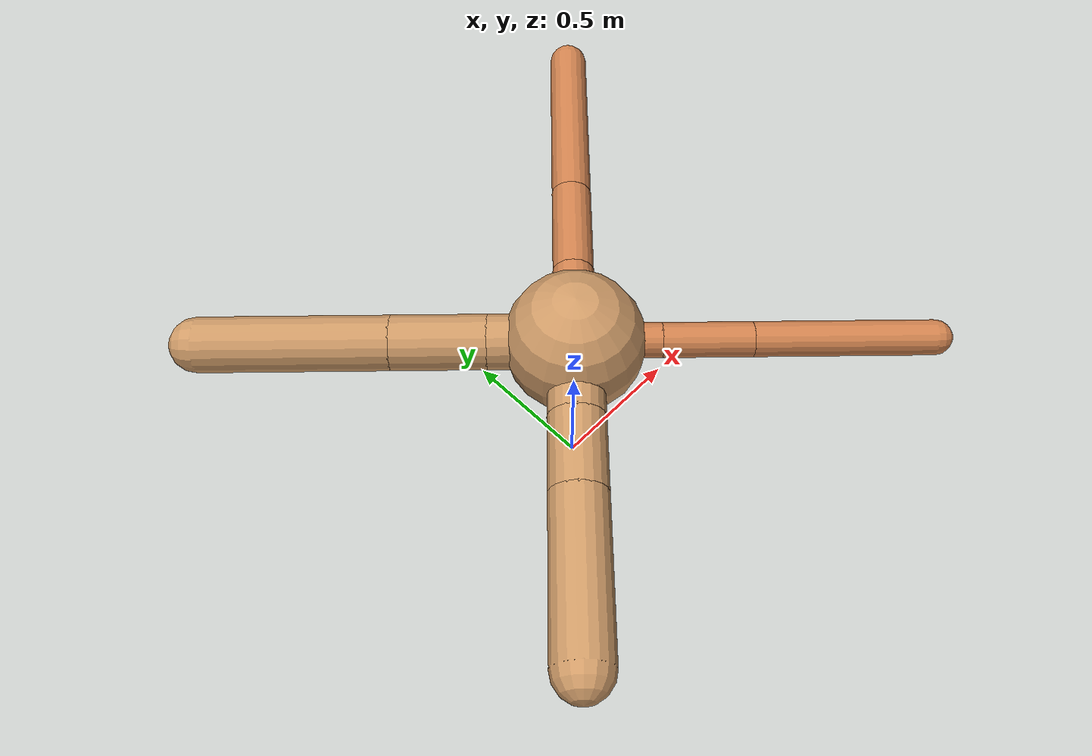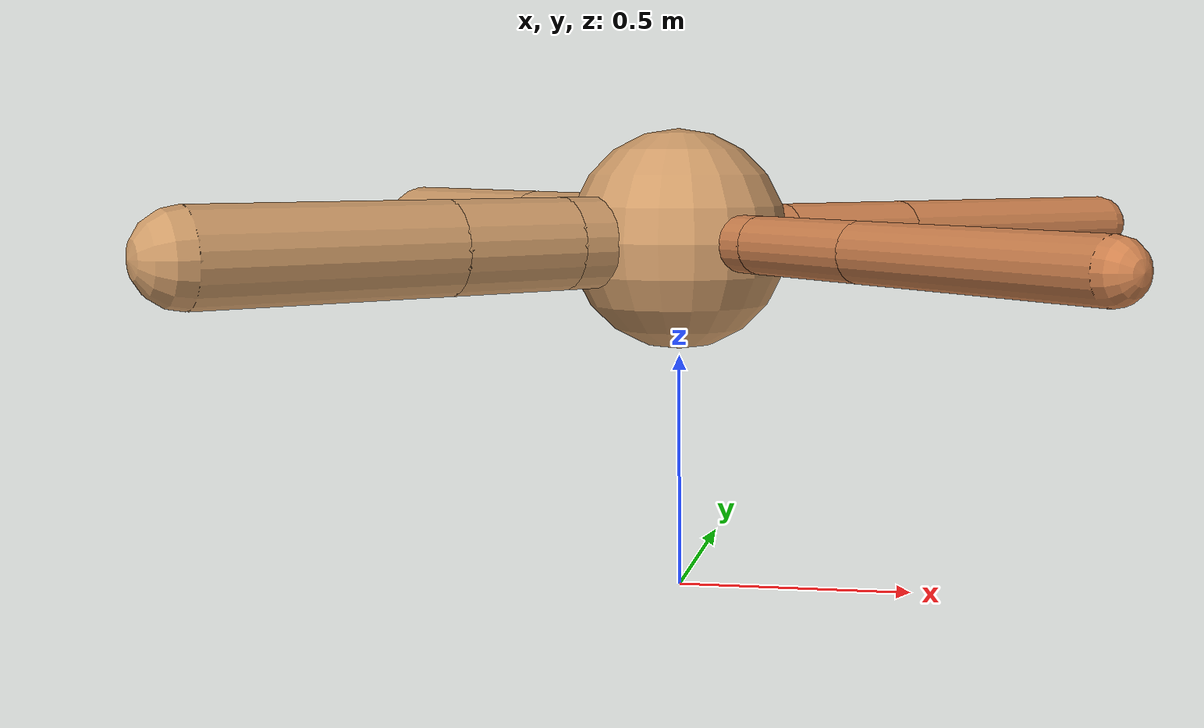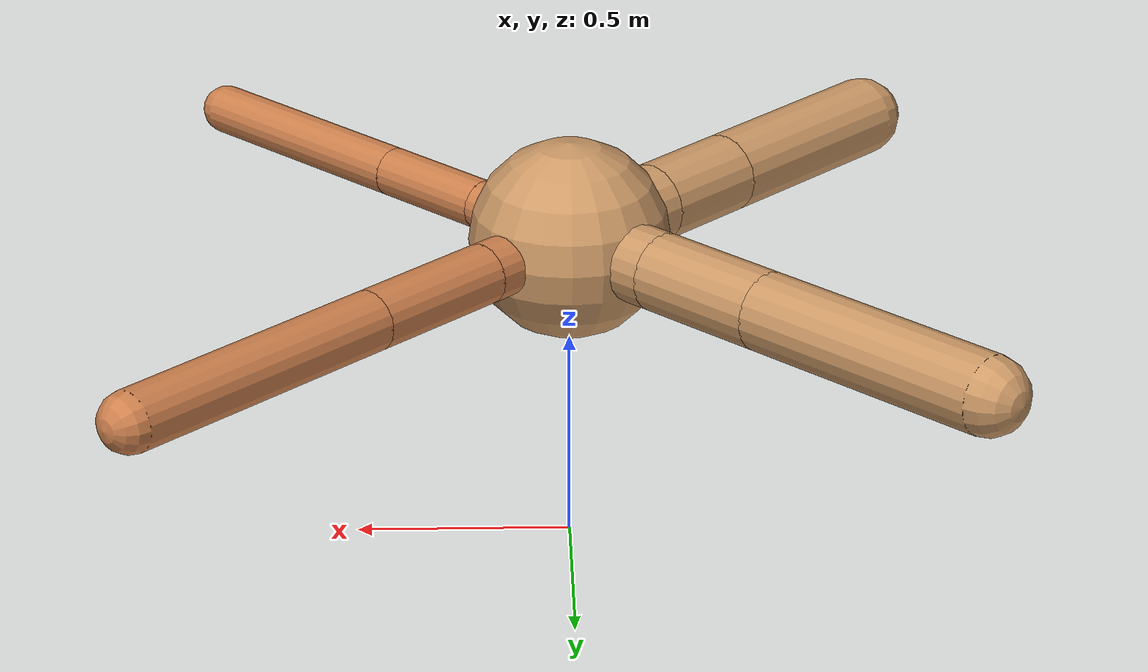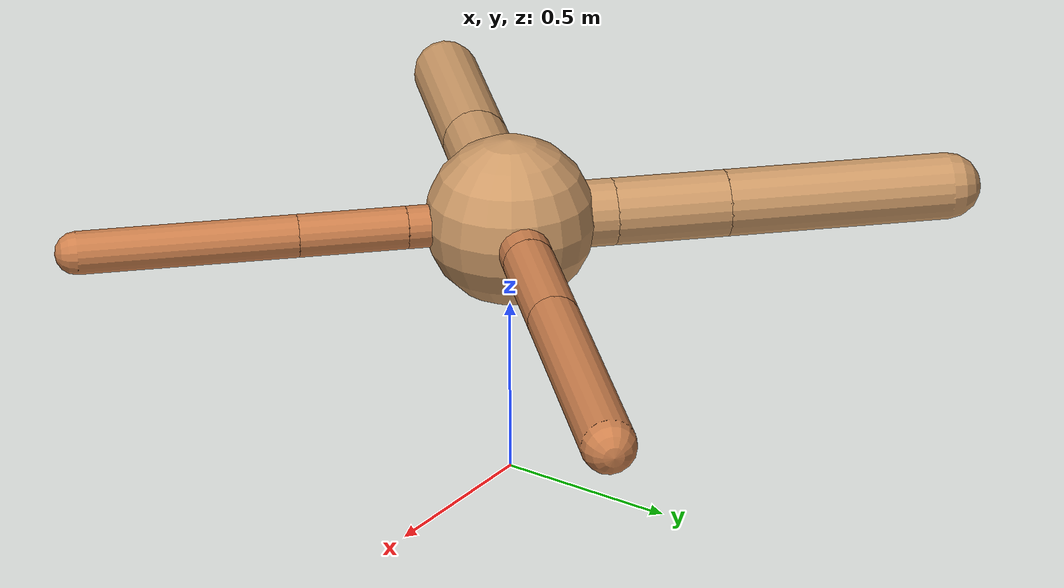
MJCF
<?xml version="1.0" ?>
<mujoco model="ant">

	<compiler angle="degree" coordinate="local" inertiafromgeom="true"/>

	<option integrator="RK4" timestep="0.01"/>

	<custom>

		<numeric data="0.0 0.0 0.55 1.0 0.0 0.0 0.0 0.0 1.0 0.0 -1.0 0.0 -1.0 0.0 1.0" name="init_qpos"/>

	</custom>

	<default>

		<joint armature="1" damping="1" limited="true"/>

		<geom conaffinity="0" condim="3" density="5.0" friction="1.5 0.1 0.1" margin="0.01" rgba="0.8 0.6 0.4 1"/>

	</default>

	<worldbody>

		<body name="torso" pos="0 0 0.75">

			<geom name="torso_geom" pos="0 0 0" size="0.23308942416083692" type="sphere"/>

			<!--joint armature="0" damping="0" limited="false" margin="0.01" name="root" pos="0 0 0" type="free"/-->

			<body name="front_left_leg" pos="0 0 0">

				<geom fromto="0 0 0 0.2 0.2 0" name="aux_1_geom" size="0.07028781262937024" type="capsule" rgba=".8 .5 .3 1"/>

				<body name="aux_1" pos="0.2 0.2 0">

					<joint axis="0 0 1" name="hip_1" pos="0.0 0.0 0.0" range="-40 40" type="hinge"/>

					<geom fromto="0 0 0 0.2473906995609017 0.2473906995609017 0" name="left_leg_geom" size="0.07028781262937024" type="capsule" rgba=".8 .5 .3 1"/>

					<body pos="0.2473906995609017 0.2473906995609017 0" name="front_left_foot">

						<joint axis="-1 1 0" name="ankle_1" pos="0.0 0.0 0.0" range="30 100" type="hinge"/>

						<geom fromto="0 0 0 0.4947813991218034 0.4947813991218034 0" name="left_ankle_geom" size="0.07028781262937024" type="capsule" rgba=".8 .5 .3 1"/>

					</body>

				</body>

			</body>

			<body name="front_right_leg" pos="0 0 0">

				<geom fromto="0 0 0 -0.2 0.2 0" name="aux_2_geom" size="0.0913185057375327" type="capsule"/>

				<body name="aux_2" pos="-0.2 0.2 0">

					<joint axis="0 0 1" name="hip_2" pos="0.0 0.0 0.0" range="-40 40" type="hinge"/>

					<geom fromto="0 0 0 -0.22068665584054267 0.22068665584054267 0" name="right_leg_geom" size="0.0913185057375327" type="capsule"/>

					<body pos="-0.22068665584054267 0.22068665584054267 0" name="front_right_foot">

						<joint axis="1 1 0" name="ankle_2" pos="0.0 0.0 0.0" range="-100 -30" type="hinge"/>

						<geom fromto="0 0 0 -0.44137331168108535 0.44137331168108535 0" name="right_ankle_geom" size="0.0913185057375327" type="capsule"/>

					</body>

				</body>

			</body>

			<body name="left_back_leg" pos="0 0 0">

				<geom fromto="0 0 0 -0.2 -0.2 0" name="aux_3_geom" size="0.09388228089760262" type="capsule"/>

				<body name="aux_3" pos="-0.2 -0.2 0">

					<joint axis="0 0 1" name="hip_3" pos="0.0 0.0 0.0" range="-40 40" type="hinge"/>

					<geom fromto="0 0 0 -0.17951722334389691 -0.17951722334389691 0" name="back_leg_geom" size="0.09388228089760262" type="capsule"/>

					<body pos="-0.17951722334389691 -0.17951722334389691 0" name="left_back_foot">

						<joint axis="-1 1 0" name="ankle_3" pos="0.0 0.0 0.0" range="-100 -30" type="hinge"/>

						<geom fromto="0 0 0 -0.35903444668779383 -0.35903444668779383 0" name="third_ankle_geom" size="0.09388228089760262" type="capsule"/>

					</body>

				</body>

			</body>

			<body name="right_back_leg" pos="0 0 0">

				<geom fromto="0 0 0 0.2 -0.2 0" name="aux_4_geom" size="0.058006523588201964" type="capsule" rgba=".8 .5 .3 1"/>

				<body name="aux_4" pos="0.2 -0.2 0">

					<joint axis="0 0 1" name="hip_4" pos="0.0 0.0 0.0" range="-40 40" type="hinge"/>

					<geom fromto="0 0 0 0.20886518914177932 -0.20886518914177932 0" name="rightback_leg_geom" size="0.058006523588201964" type="capsule" rgba=".8 .5 .3 1"/>

					<body pos="0.20886518914177932 -0.20886518914177932 0" name="right_back_foot">

						<joint axis="1 1 0" name="ankle_4" pos="0.0 0.0 0.0" range="30 100" type="hinge"/>

						<geom fromto="0 0 0 0.41773037828355863 -0.41773037828355863 0" name="fourth_ankle_geom" size="0.058006523588201964" type="capsule" rgba=".8 .5 .3 1"/>

					</body>

				</body>

			</body>

		</body>

	</worldbody>

	<actuator>

		<motor ctrllimited="true" ctrlrange="-1.0 1.0" joint="hip_4" gear="150"/>

		<motor ctrllimited="true" ctrlrange="-1.0 1.0" joint="ankle_4" gear="150"/>

		<motor ctrllimited="true" ctrlrange="-1.0 1.0" joint="hip_1" gear="150"/>

		<motor ctrllimited="true" ctrlrange="-1.0 1.0" joint="ankle_1" gear="150"/>

		<motor ctrllimited="true" ctrlrange="-1.0 1.0" joint="hip_2" gear="150"/>

		<motor ctrllimited="true" ctrlrange="-1.0 1.0" joint="ankle_2" gear="150"/>

		<motor ctrllimited="true" ctrlrange="-1.0 1.0" joint="hip_3" gear="150"/>

		<motor ctrllimited="true" ctrlrange="-1.0 1.0" joint="ankle_3" gear="150"/>

	</actuator>

</mujoco>
